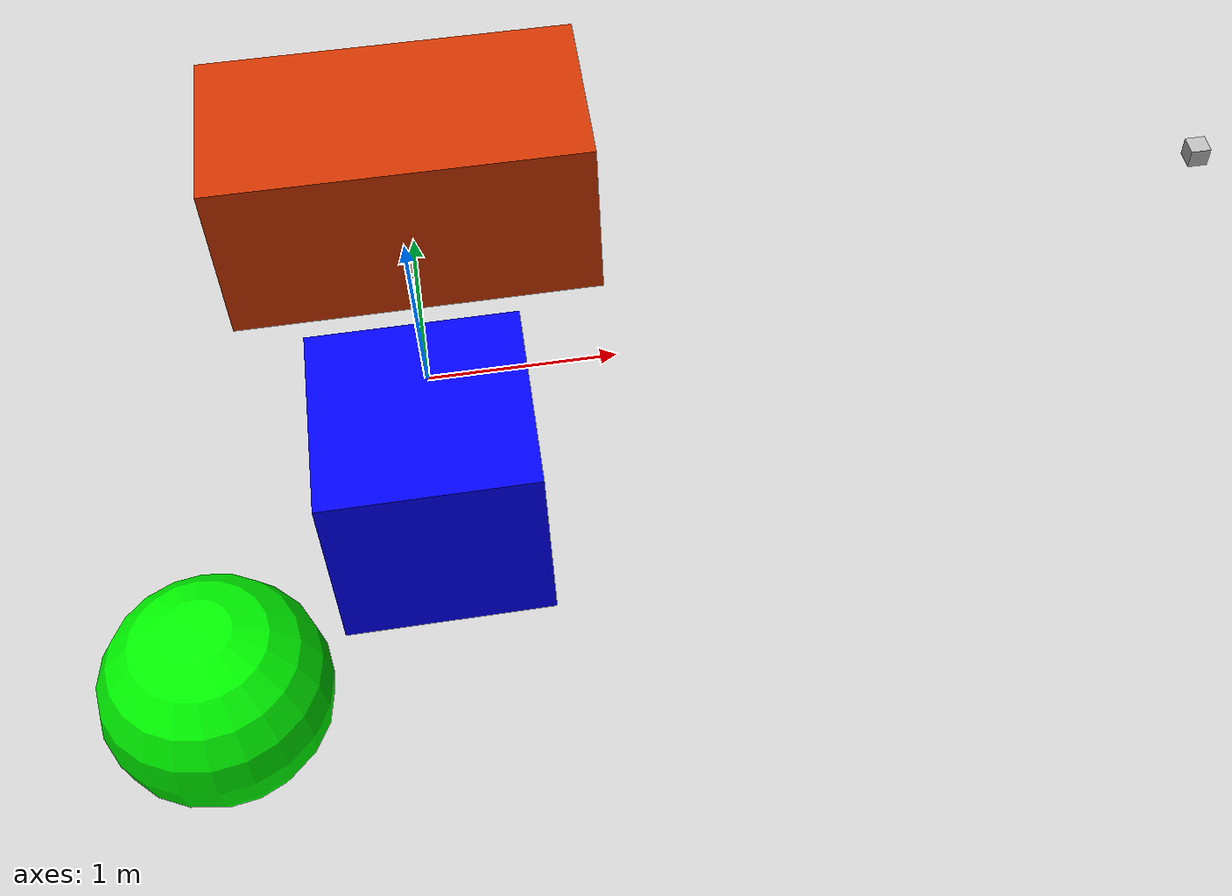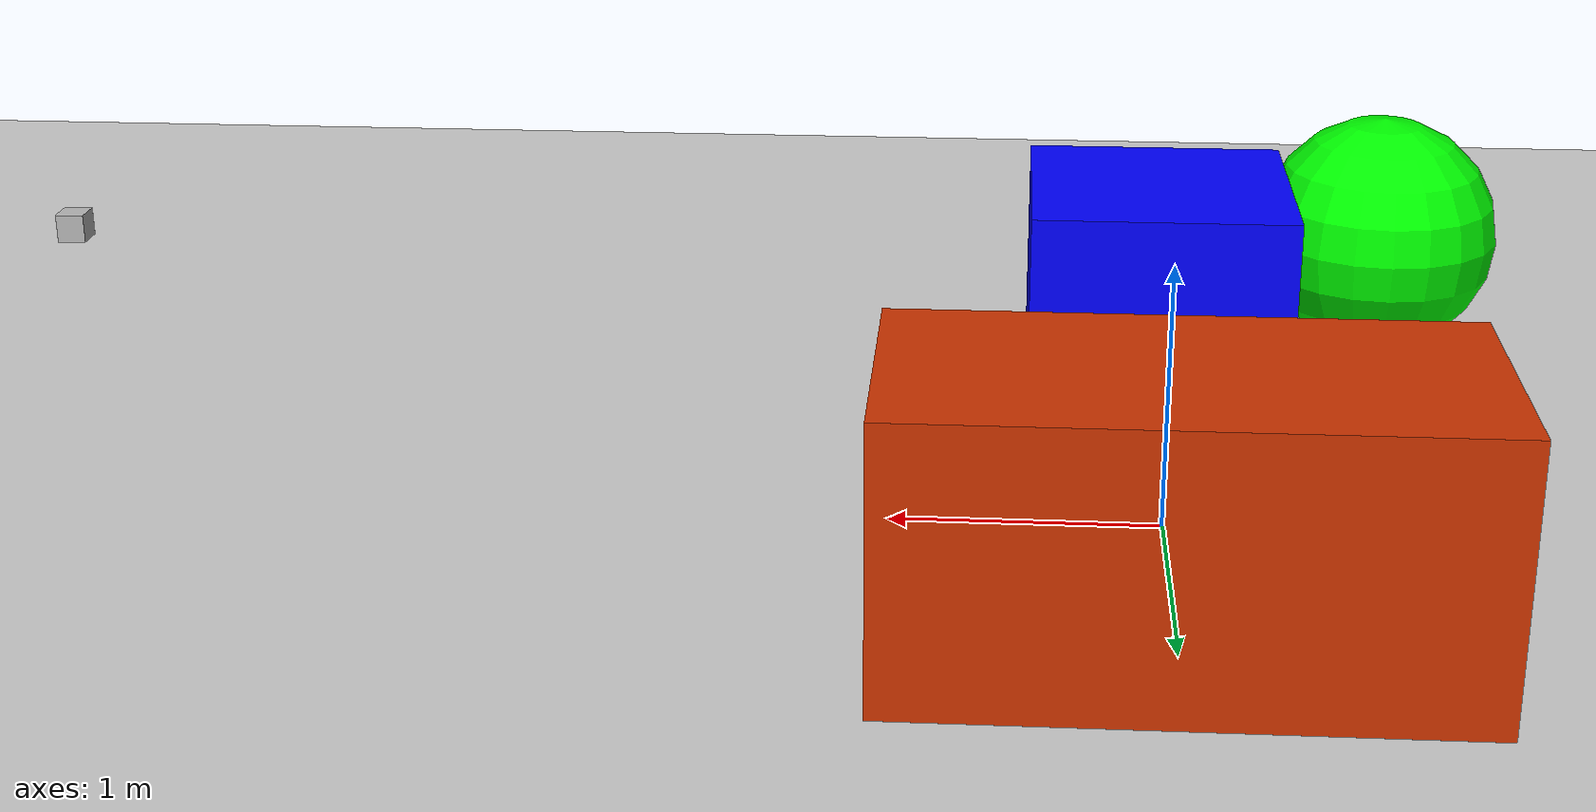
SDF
<sdf version="1.6">
 <world name="boundingbox_sensor">
  <plugin filename="gz-sim-physics-system" name="gz::sim::systems::Physics"/>
  <plugin filename="gz-sim-user-commands-system" name="gz::sim::systems::UserCommands"/>
  <plugin filename="gz-sim-scene-broadcaster-system" name="gz::sim::systems::SceneBroadcaster"/>
  <plugin filename="gz-sim-sensors-system" name="gz::sim::systems::Sensors">
   <render_engine>ogre2</render_engine>
  </plugin>
  <light type="directional" name="sun">
   <pose>0 0 10 0 0 0</pose>
   <diffuse>0.8 0.8 0.8 1</diffuse>
   <specular>0.8 0.8 0.8 1</specular>
   <attenuation>
    <range>1000</range>
    <constant>0.9</constant>
    <linear>0.01</linear>
    <quadratic>0.001</quadratic>
   </attenuation>
   <direction>-0.5 0.1 -0.9</direction>
  </light>
  <model name="ground_plane">
   <static>true</static>
   <link name="link">
    <collision name="collision">
     <geometry><plane><normal>0 0 1</normal><size>100 100</size></plane></geometry>
    </collision>
    <visual name="visual">
     <geometry><plane><normal>0 0 1</normal><size>100 100</size></plane></geometry>
     <material>
      <ambient>0.8 0.8 0.8 1</ambient>
      <diffuse>0.8 0.8 0.8 1</diffuse>
      <specular>0.8 0.8 0.8 1</specular>
     </material>
    </visual>
   </link>
  </model>
  <model name="box">
   <pose>0 -1 0.5 0 0 0</pose>
   <link name="box_link">
    <inertial>
     <inertia><ixx>1</ixx><ixy>0</ixy><ixz>0</ixz><iyy>1</iyy><iyz>0</iyz><izz>1</izz></inertia>
     <mass>1.0</mass>
    </inertial>
    <collision name="box_collision"><geometry><box><size>1 1 1</size></box></geometry></collision>
    <visual name="box_visual">
     <geometry><box><size>1 1 1</size></box></geometry>
     <material><ambient>0 0 0.5 1</ambient><diffuse>0 0 1 1</diffuse><specular>0 0 0.3 1</specular></material>
     <plugin filename="gz-sim-label-system" name="gz::sim::systems::Label"><label>10</label></plugin>
    </visual>
   </link>
  </model>
  <model name="box2">
   <plugin filename="gz-sim-label-system" name="gz::sim::systems::Label"><label>10</label></plugin>
   <pose>0 1 0.5 0 0 0</pose>
   <link name="box_link2">
    <inertial>
     <inertia><ixx>1</ixx><ixy>0</ixy><ixz>0</ixz><iyy>1</iyy><iyz>0</iyz><izz>1</izz></inertia>
     <mass>1.0</mass>
    </inertial>
    <collision name="box_collision2"><geometry><box><size>2 1 1</size></box></geometry></collision>
    <visual name="box_visual2">
     <geometry><box><size>2 1 1</size></box></geometry>
     <material><ambient>1 0 0 1</ambient><diffuse>0.8 0.2 0 1</diffuse><specular>0.8 0 0 1</specular></material>
    </visual>
   </link>
  </model>
  <model name="sphere">
   <static>true</static>
   <pose>-1 -2 0.5 0 0 0</pose>
   <link name="sphere_link">
    <collision name="sphere_collision"><geometry><sphere><radius>0.5</radius></sphere></geometry></collision>
    <visual name="sphere_visual">
     <geometry><sphere><radius>0.5</radius></sphere></geometry>
     <material><ambient>0 1 0 1</ambient><diffuse>0 1 0 1</diffuse><specular>0 1 0 1</specular></material>
     <cast_shadows>false</cast_shadows>
    </visual>
   </link>
   <plugin filename="gz-sim-label-system" name="gz::sim::systems::Label"><label>20</label></plugin>
  </model>
  <model name="boundingbox_camera">
   <pose>4 0 1.0 0 0.0 3.14</pose>
   <link name="link">
    <pose>0.05 0.05 0.05 0 0 0</pose>
    <inertial>
     <mass>0.1</mass>
     <inertia><ixx>0.000166667</ixx><iyy>0.000166667</iyy><izz>0.000166667</izz></inertia>
    </inertial>
    <collision name="collision"><geometry><box><size>0.1 0.1 0.1</size></box></geometry></collision>
    <visual name="visual"><geometry><box><size>0.1 0.1 0.1</size></box></geometry></visual>
    <sensor name="full_2d" type="boundingbox_camera">
     <topic>boxes_full_2d</topic>
     <camera>
      <box_type>full_2d</box_type>
      <horizontal_fov>1.57</horizontal_fov>
      <image><width>800</width><height>600</height></image>
      <clip><near>0.1</near><far>10</far></clip>
      <save enabled="true"><path>bounding_box_full_2d_data</path></save>
     </camera>
     <always_on>1</always_on>
     <update_rate>30</update_rate>
     <visualize>true</visualize>
    </sensor>
    <sensor name="visible_2d" type="boundingbox_camera">
     <topic>boxes_visible_2d</topic>
     <camera>
      <box_type>visible_2d</box_type>
      <horizontal_fov>1.57</horizontal_fov>
      <image><width>800</width><height>600</height></image>
      <clip><near>0.1</near><far>10</far></clip>
      <save enabled="true"><path>bounding_box_visible_2d_data</path></save>
     </camera>
     <always_on>1</always_on>
     <update_rate>30</update_rate>
     <visualize>true</visualize>
    </sensor>
    <sensor name="3d" type="boundingbox_camera">
     <topic>boxes_3d</topic>
     <camera>
      <box_type>3d</box_type>
      <horizontal_fov>1.57</horizontal_fov>
      <image><width>800</width><height>600</height></image>
      <clip><near>0.1</near><far>10</far></clip>
      <save enabled="true"><path>bounding_box_3d_data</path></save>
     </camera>
     <always_on>1</always_on>
     <update_rate>30</update_rate>
     <visualize>true</visualize>
    </sensor>
   </link>
  </model>
 </world>
</sdf>
